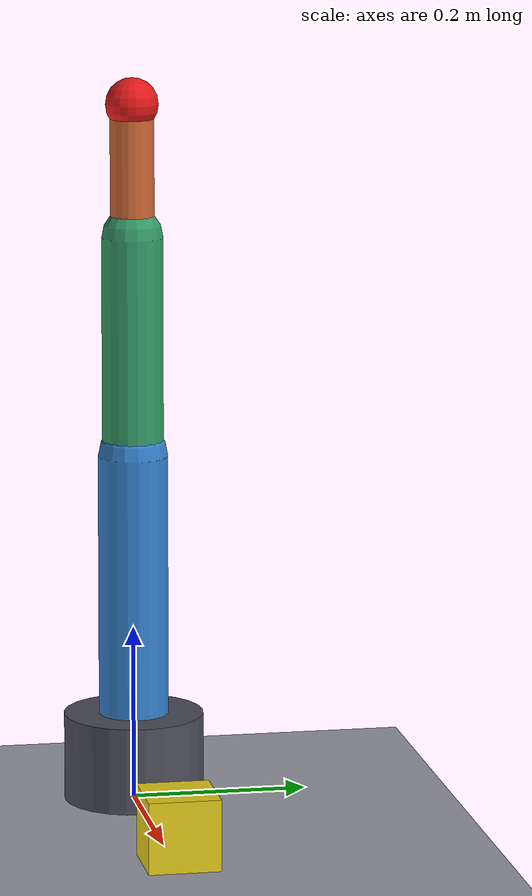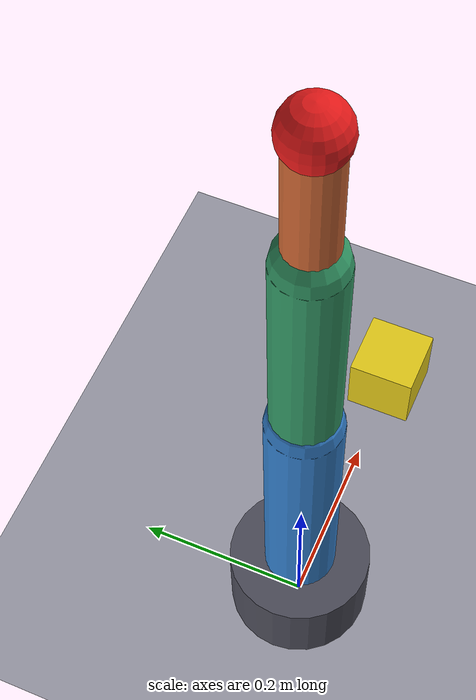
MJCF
<mujoco model="demo_arm">
  <option timestep="0.002" gravity="0 0 -9.81"/>
  <compiler angle="radian"/>

  <default>
    <joint damping="1.0"/>
    <geom friction="0.8 0.005 0.0001" rgba="0.6 0.6 0.65 1"/>
  </default>

  <asset>
    <texture type="2d" name="grid_tex" builtin="checker" width="128" height="128"
             rgb1="0.9 0.9 0.92" rgb2="0.7 0.7 0.74"/>
    <material name="grid_mat" texture="grid_tex" texrepeat="4 4"/>
  </asset>

  <worldbody>
    <light name="top_light" pos="0 0 3" dir="0 0 -1" diffuse="0.9 0.9 0.9"/>
    <light name="side_light" pos="2 2 2" dir="-1 -1 -1" diffuse="0.5 0.5 0.5"/>

    <geom name="floor" type="plane" size="2 2 0.05" material="grid_mat"/>

    <body name="base" pos="0 0 0.05">
      <geom name="base_geom" type="cylinder" size="0.08 0.05" rgba="0.3 0.3 0.35 1"/>

      <body name="link1" pos="0 0 0.05">
        <joint name="shoulder" type="hinge" axis="0 1 0" range="-1.57 1.57" damping="0.5"/>
        <geom name="link1_geom" type="capsule" fromto="0 0 0 0 0 0.3" size="0.04"
              rgba="0.2 0.5 0.8 1"/>

        <body name="link2" pos="0 0 0.3">
          <joint name="elbow" type="hinge" axis="0 1 0" range="-2.0 0.1" damping="0.3"/>
          <geom name="link2_geom" type="capsule" fromto="0 0 0 0 0 0.25" size="0.035"
                rgba="0.2 0.6 0.4 1"/>

          <body name="link3" pos="0 0 0.25">
            <joint name="wrist" type="hinge" axis="0 1 0" range="-1.57 1.57" damping="0.2"/>
            <geom name="link3_geom" type="capsule" fromto="0 0 0 0 0 0.15" size="0.025"
                  rgba="0.8 0.4 0.2 1"/>
            <geom name="ee_marker" type="sphere" size="0.03" pos="0 0 0.15"
                  rgba="0.9 0.1 0.1 1" contype="0" conaffinity="0"/>
          </body>
        </body>
      </body>
    </body>

    <!-- A target object to interact with -->
    <body name="box" pos="0.3 0 0.05">
      <geom name="box_geom" type="box" size="0.04 0.04 0.04" rgba="0.9 0.8 0.1 1"
            mass="0.2"/>
    </body>
  </worldbody>

  <actuator>
    <motor name="shoulder_motor" joint="shoulder" ctrlrange="-5 5" ctrllimited="true"/>
    <motor name="elbow_motor" joint="elbow" ctrlrange="-5 5" ctrllimited="true"/>
    <motor name="wrist_motor" joint="wrist" ctrlrange="-3 3" ctrllimited="true"/>
  </actuator>
</mujoco>
